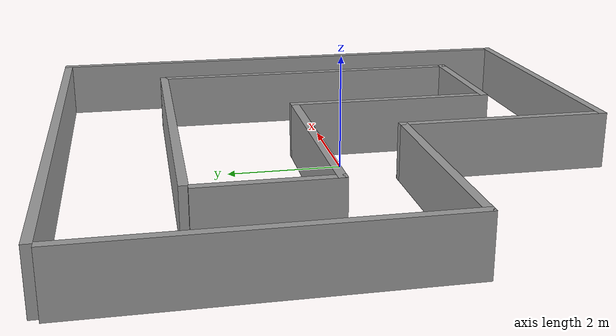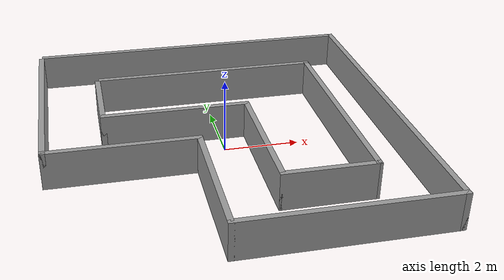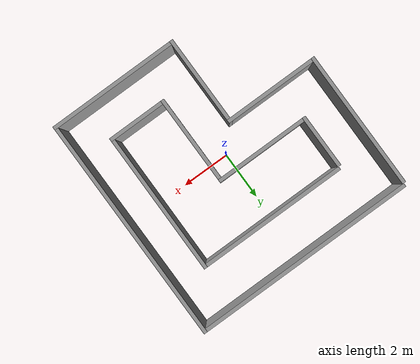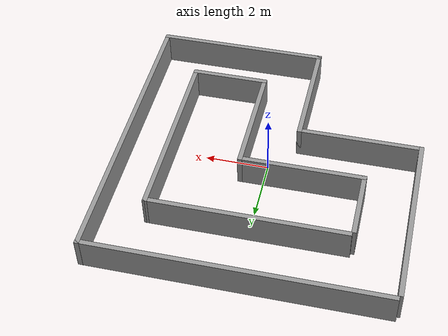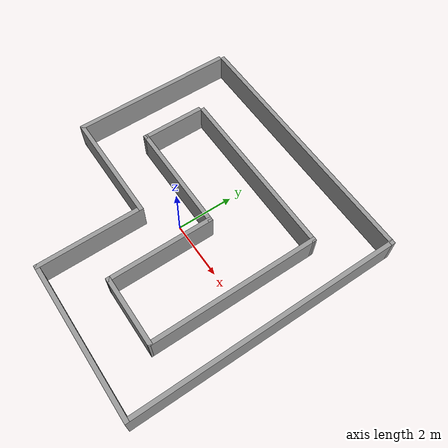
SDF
<?xml version='1.0'?>
<sdf version='1.5'>
  <model name='Circuit_ql_2'>
    <pose frame=''>-0.076 0.178 0 0 -0 0</pose>
    <link name='Wall_0'>
      <collision name='Wall_0_Collision'>
        <geometry>
          <box>
            <size>5.75 0.15 1</size>
          </box>
        </geometry>
        <pose frame=''>0 0 0.5 0 -0 0</pose>
      </collision>
      <visual name='Wall_0_Visual'>
        <pose frame=''>0 0 0.5 0 -0 0</pose>
        <geometry>
          <box>
            <size>5.75 0.15 1</size>
          </box>
        </geometry>
        <material>
          <script>
            <uri>file://media/materials/scripts/gazebo.material</uri>
            <name>Gazebo/Grey</name>
          </script>
          <ambient>1 1 1 1</ambient>
        </material>
      </visual>
      <pose frame=''>-4.6 1.725 0 0 0 -1.5708</pose>
    </link>
    <link name='Wall_1'>
      <collision name='Wall_1_Collision'>
        <geometry>
          <box>
            <size>4 0.15 1</size>
          </box>
        </geometry>
        <pose frame=''>0 0 0.5 0 -0 0</pose>
      </collision>
      <visual name='Wall_1_Visual'>
        <pose frame=''>0 0 0.5 0 -0 0</pose>
        <geometry>
          <box>
            <size>4 0.15 1</size>
          </box>
        </geometry>
        <material>
          <script>
            <uri>file://media/materials/scripts/gazebo.material</uri>
            <name>Gazebo/Grey</name>
          </script>
          <ambient>1 1 1 1</ambient>
        </material>
      </visual>
      <pose frame=''>-2.675 -1.075 0 0 -0 0</pose>
    </link>
    <link name='Wall_11'>
      <collision name='Wall_11_Collision'>
        <geometry>
          <box>
            <size>2.25 0.15 1</size>
          </box>
        </geometry>
        <pose frame=''>0 0 0.5 0 -0 0</pose>
      </collision>
      <visual name='Wall_11_Visual'>
        <pose frame=''>0 0 0.5 0 -0 0</pose>
        <geometry>
          <box>
            <size>2.25 0.15 1</size>
          </box>
        </geometry>
        <material>
          <script>
            <uri>file://media/materials/scripts/gazebo.material</uri>
            <name>Gazebo/Grey</name>
          </script>
          <ambient>1 1 1 1</ambient>
        </material>
      </visual>
      <pose frame=''>-3.036 1.559 0 0 0 -1.5708</pose>
    </link>
    <link name='Wall_12'>
      <collision name='Wall_12_Collision'>
        <geometry>
          <box>
            <size>4 0.15 1</size>
          </box>
        </geometry>
        <pose frame=''>0 0 0.5 0 -0 0</pose>
      </collision>
      <visual name='Wall_12_Visual'>
        <pose frame=''>0 0 0.5 0 -0 0</pose>
        <geometry>
          <box>
            <size>4 0.15 1</size>
          </box>
        </geometry>
        <material>
          <script>
            <uri>file://media/materials/scripts/gazebo.material</uri>
            <name>Gazebo/Grey</name>
          </script>
          <ambient>1 1 1 1</ambient>
        </material>
      </visual>
      <pose frame=''>-1.111 0.509 0 0 -0 0</pose>
    </link>
    <link name='Wall_13'>
      <collision name='Wall_13_Collision'>
        <geometry>
          <box>
            <size>3.75 0.15 1</size>
          </box>
        </geometry>
        <pose frame=''>0 0 0.5 0 -0 0</pose>
      </collision>
      <visual name='Wall_13_Visual'>
        <pose frame=''>0 0 0.5 0 -0 0</pose>
        <geometry>
          <box>
            <size>3.75 0.15 1</size>
          </box>
        </geometry>
        <material>
          <script>
            <uri>file://media/materials/scripts/gazebo.material</uri>
            <name>Gazebo/Grey</name>
          </script>
          <ambient>1 1 1 1</ambient>
        </material>
      </visual>
      <pose frame=''>0.814 -1.291 0 0 0 -1.5708</pose>
    </link>
    <link name='Wall_14'>
      <collision name='Wall_14_Collision'>
        <geometry>
          <box>
            <size>2.5 0.15 1</size>
          </box>
        </geometry>
        <pose frame=''>0 0 0.5 0 -0 0</pose>
      </collision>
      <visual name='Wall_14_Visual'>
        <pose frame=''>0 0 0.5 0 -0 0</pose>
        <geometry>
          <box>
            <size>2.5 0.15 1</size>
          </box>
        </geometry>
        <material>
          <script>
            <uri>file://media/materials/scripts/gazebo.material</uri>
            <name>Gazebo/Grey</name>
          </script>
          <ambient>1 1 1 1</ambient>
        </material>
      </visual>
      <pose frame=''>1.989 -3.091 0 0 -0 0</pose>
    </link>
    <link name='Wall_15'>
      <collision name='Wall_15_Collision'>
        <geometry>
          <box>
            <size>5.98502 0.15 1</size>
          </box>
        </geometry>
        <pose frame=''>0 0 0.5 0 -0 0</pose>
      </collision>
      <visual name='Wall_15_Visual'>
        <pose frame=''>0 0 0.5 0 -0 0</pose>
        <geometry>
          <box>
            <size>5.98502 0.15 1</size>
          </box>
        </geometry>
        <material>
          <script>
            <uri>file://media/materials/scripts/gazebo.material</uri>
            <name>Gazebo/Grey</name>
          </script>
          <ambient>1 1 1 1</ambient>
        </material>
      </visual>
      <pose frame=''>3.1715 -0.1735 0 0 -0 1.56823</pose>
    </link>
    <link name='Wall_16'>
      <collision name='Wall_16_Collision'>
        <geometry>
          <box>
            <size>6.25 0.15 1</size>
          </box>
        </geometry>
        <pose frame=''>0 0 0.5 0 -0 0</pose>
      </collision>
      <visual name='Wall_16_Visual'>
        <pose frame=''>0 0 0.5 0 -0 0</pose>
        <geometry>
          <box>
            <size>6.25 0.15 1</size>
          </box>
        </geometry>
        <material>
          <script>
            <uri>file://media/materials/scripts/gazebo.material</uri>
            <name>Gazebo/Grey</name>
          </script>
          <ambient>1 1 1 1</ambient>
        </material>
      </visual>
      <pose frame=''>0.129 2.744 0 0 -0 3.14159</pose>
    </link>
    <link name='Wall_2'>
      <collision name='Wall_2_Collision'>
        <geometry>
          <box>
            <size>3.75 0.15 1</size>
          </box>
        </geometry>
        <pose frame=''>0 0 0.5 0 -0 0</pose>
      </collision>
      <visual name='Wall_2_Visual'>
        <pose frame=''>0 0 0.5 0 -0 0</pose>
        <geometry>
          <box>
            <size>3.75 0.15 1</size>
          </box>
        </geometry>
        <material>
          <script>
            <uri>file://media/materials/scripts/gazebo.material</uri>
            <name>Gazebo/Grey</name>
          </script>
          <ambient>1 1 1 1</ambient>
        </material>
      </visual>
      <pose frame=''>-0.75 -2.875 0 0 0 -1.5708</pose>
    </link>
    <link name='Wall_3'>
      <collision name='Wall_3_Collision'>
        <geometry>
          <box>
            <size>5.5 0.15 1</size>
          </box>
        </geometry>
        <pose frame=''>0 0 0.5 0 -0 0</pose>
      </collision>
      <visual name='Wall_3_Visual'>
        <pose frame=''>0 0 0.5 0 -0 0</pose>
        <geometry>
          <box>
            <size>5.5 0.15 1</size>
          </box>
        </geometry>
        <material>
          <script>
            <uri>file://media/materials/scripts/gazebo.material</uri>
            <name>Gazebo/Grey</name>
          </script>
          <ambient>1 1 1 1</ambient>
        </material>
      </visual>
      <pose frame=''>1.925 -4.675 0 0 -0 0</pose>
    </link>
    <link name='Wall_7'>
      <collision name='Wall_7_Collision'>
        <geometry>
          <box>
            <size>9.5 0.15 1</size>
          </box>
        </geometry>
        <pose frame=''>0 0 0.5 0 -0 0</pose>
      </collision>
      <visual name='Wall_7_Visual'>
        <pose frame=''>0 0 0.5 0 -0 0</pose>
        <geometry>
          <box>
            <size>9.5 0.15 1</size>
          </box>
        </geometry>
        <material>
          <script>
            <uri>file://media/materials/scripts/gazebo.material</uri>
            <name>Gazebo/Grey</name>
          </script>
          <ambient>1 1 1 1</ambient>
        </material>
      </visual>
      <pose frame=''>4.6 0 0 0 -0 1.5708</pose>
    </link>
    <link name='Wall_9'>
      <collision name='Wall_9_Collision'>
        <geometry>
          <box>
            <size>9.25 0.15 1</size>
          </box>
        </geometry>
        <pose frame=''>0 0 0.5 0 -0 0</pose>
      </collision>
      <visual name='Wall_9_Visual'>
        <pose frame=''>0 0 0.5 0 -0 0</pose>
        <geometry>
          <box>
            <size>9.25 0.15 1</size>
          </box>
        </geometry>
        <material>
          <script>
            <uri>file://media/materials/scripts/gazebo.material</uri>
            <name>Gazebo/Grey</name>
          </script>
          <ambient>1 1 1 1</ambient>
        </material>
      </visual>
      <pose frame=''>0.05 4.675 0 0 -0 3.14159</pose>
    </link>
    <static>1</static>
  </model>
</sdf>
